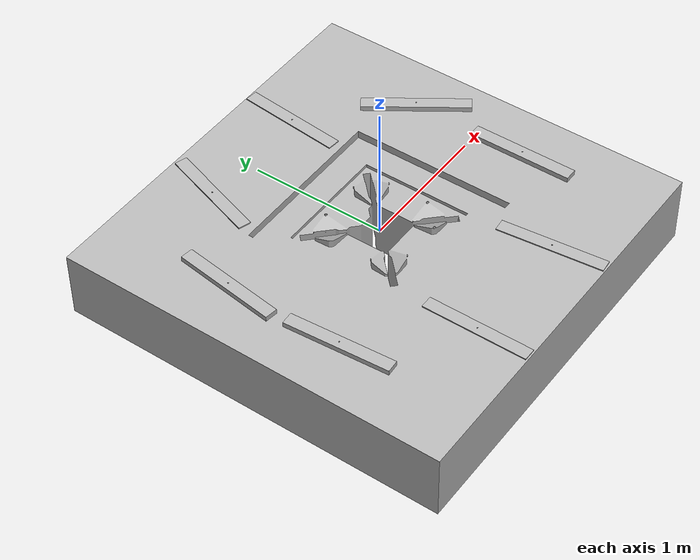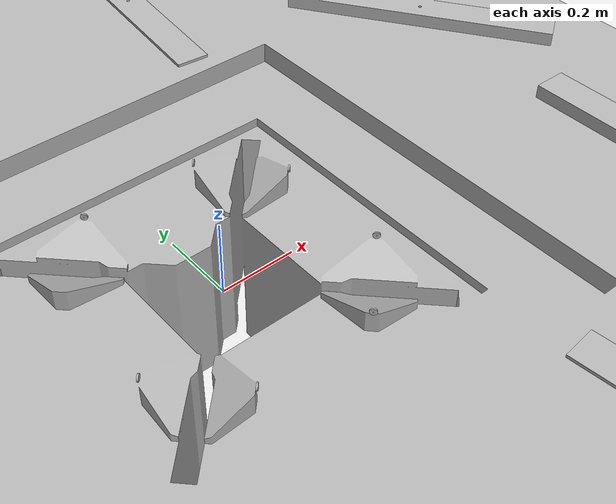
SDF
<sdf version='1.7'>
  <model name='UHL_V6_collision_SIM_V03.SLDASM'>
    <link name='base_link_col'>
      <inertial>
        <pose>0 0.000123 -0.14229 0 -0 0</pose>
        <mass>3900.6</mass>
        <inertia>
          <ixx>2835.7</ixx>
          <ixy>6.7307e-14</ixy>
          <ixz>-1.9911e-14</ixz>
          <iyy>2835.5</iyy>
          <iyz>0.017642</iyz>
          <izz>5515.3</izz>
        </inertia>
      </inertial>
      <collision name='base_link_col_collision'>
        <pose>0 0 0 0 -0 0</pose>
        <geometry>
          <mesh>
            <scale>1 1 1</scale>
            <uri>model://UHL_V6_collision_SIM_V03.SLDASM/meshes/base_link_col.STL</uri>
          </mesh>
        </geometry>
      </collision>
      <visual name='base_link_col_visual'>
        <pose>0 0 0 0 -0 0</pose>
        <geometry>
          <mesh>
            <scale>1 1 1</scale>
            <uri>model://UHL_V6_collision_SIM_V03.SLDASM/meshes/base_link_col.STL</uri>
          </mesh>
        </geometry>
      </visual>
    </link>
    <joint name='prop_1_col' type='revolute'>
      <pose relative_to='base_link_col'>1.0378 -0.42844 0.1217 0 -0 1.5708</pose>
      <parent>base_link_col</parent>
      <child>prop_1_col</child>
      <axis>
        <xyz>0 0 1</xyz>
        <limit>
          <lower>-1e+16</lower>
          <upper>1e+16</upper>
          <effort>100</effort>
          <velocity>100</velocity>
        </limit>
        <dynamics>
          <damping>0.004</damping>
          <friction>0</friction>
          <spring_reference>0</spring_reference>
          <spring_stiffness>0</spring_stiffness>
        </dynamics>
      </axis>
    </joint>
    <link name='prop_1_col'>
      <pose relative_to='prop_1_col'>0 0 0 0 -0 0</pose>
      <inertial>
        <pose>-0 0 0 0 -0 0</pose>
        <mass>3.6413</mass>
        <inertia>
          <ixx>0.0033917</ixx>
          <ixy>8.1992e-16</ixy>
          <ixz>-7.0271e-19</ixz>
          <iyy>0.17721</iyy>
          <iyz>-5.0088e-20</iyz>
          <izz>0.17896</izz>
        </inertia>
      </inertial>
      <collision name='prop_1_col_collision'>
        <pose>0 0 0 0 -0 0</pose>
        <geometry>
          <mesh>
            <scale>1 1 1</scale>
            <uri>model://UHL_V6_collision_SIM_V03.SLDASM/meshes/prop_1_col.STL</uri>
          </mesh>
        </geometry>
      </collision>
      <visual name='prop_1_col_visual'>
        <pose>0 0 0 0 -0 0</pose>
        <geometry>
          <mesh>
            <scale>1 1 1</scale>
            <uri>model://UHL_V6_collision_SIM_V03.SLDASM/meshes/prop_1_col.STL</uri>
          </mesh>
        </geometry>
      </visual>
    </link>
    <joint name='prop_2_col' type='revolute'>
      <pose relative_to='base_link_col'>-1.0378 0.42844 0.1217 0 -0 1.4342</pose>
      <parent>base_link_col</parent>
      <child>prop_2_col</child>
      <axis>
        <xyz>0 0 1</xyz>
        <limit>
          <lower>-1e+16</lower>
          <upper>1e+16</upper>
          <effort>100</effort>
          <velocity>100</velocity>
        </limit>
        <dynamics>
          <damping>0.004</damping>
          <friction>0</friction>
          <spring_reference>0</spring_reference>
          <spring_stiffness>0</spring_stiffness>
        </dynamics>
      </axis>
    </joint>
    <link name='prop_2_col'>
      <pose relative_to='prop_2_col'>0 0 0 0 -0 0</pose>
      <inertial>
        <pose>-0 0 0 0 -0 0</pose>
        <mass>3.64132</mass>
        <inertia>
          <ixx>0.00339171</ixx>
          <ixy>7.78972e-16</ixy>
          <ixz>3.77845e-19</ixz>
          <iyy>0.177211</iyy>
          <iyz>-6.25654e-20</iyz>
          <izz>0.178962</izz>
        </inertia>
      </inertial>
      <collision name='prop_2_col_collision'>
        <pose>0 0 0 0 -0 0</pose>
        <geometry>
          <mesh>
            <scale>1 1 1</scale>
            <uri>model://UHL_V6_collision_SIM_V03.SLDASM/meshes/prop_2_col.STL</uri>
          </mesh>
        </geometry>
      </collision>
      <visual name='prop_2_col_visual'>
        <pose>0 0 0 0 -0 0</pose>
        <geometry>
          <mesh>
            <scale>1 1 1</scale>
            <uri>model://UHL_V6_collision_SIM_V03.SLDASM/meshes/prop_2_col.STL</uri>
          </mesh>
        </geometry>
      </visual>
    </link>
    <joint name='prop_3_col' type='revolute'>
      <pose relative_to='base_link_col'>0.43532 -1.0378 0.093 0 0 -1.468</pose>
      <parent>base_link_col</parent>
      <child>prop_3_col</child>
      <axis>
        <xyz>0 0 1</xyz>
        <limit>
          <lower>-1e+16</lower>
          <upper>1e+16</upper>
          <effort>100</effort>
          <velocity>100</velocity>
        </limit>
        <dynamics>
          <damping>0.004</damping>
          <friction>0</friction>
          <spring_reference>0</spring_reference>
          <spring_stiffness>0</spring_stiffness>
        </dynamics>
      </axis>
    </joint>
    <link name='prop_3_col'>
      <pose relative_to='prop_3_col'>0 0 0 0 -0 0</pose>
      <inertial>
        <pose>-0 -0 0 0 -0 0</pose>
        <mass>3.64132</mass>
        <inertia>
          <ixx>0.00339171</ixx>
          <ixy>8.31963e-16</ixy>
          <ixz>-2.78302e-19</ixz>
          <iyy>0.177211</iyy>
          <iyz>-3.68188e-21</iyz>
          <izz>0.178962</izz>
        </inertia>
      </inertial>
      <collision name='prop_3_col_collision'>
        <pose>0 0 0 0 -0 0</pose>
        <geometry>
          <mesh>
            <scale>1 1 1</scale>
            <uri>model://UHL_V6_collision_SIM_V03.SLDASM/meshes/prop_3_col.STL</uri>
          </mesh>
        </geometry>
      </collision>
      <visual name='prop_3_col_visual'>
        <pose>0 0 0 0 -0 0</pose>
        <geometry>
          <mesh>
            <scale>1 1 1</scale>
            <uri>model://UHL_V6_collision_SIM_V03.SLDASM/meshes/prop_3_col.STL</uri>
          </mesh>
        </geometry>
      </visual>
    </link>
    <joint name='prop_4_col' type='revolute'>
      <pose relative_to='base_link_col'>-1.03778 -0.428443 0.121702 0 0 -1.50178</pose>
      <parent>base_link_col</parent>
      <child>prop_4_col</child>
      <axis>
        <xyz>0 0 1</xyz>
        <limit>
          <lower>-1e+16</lower>
          <upper>1e+16</upper>
          <effort>100</effort>
          <velocity>100</velocity>
        </limit>
        <dynamics>
          <damping>0.004</damping>
          <friction>0</friction>
          <spring_reference>0</spring_reference>
          <spring_stiffness>0</spring_stiffness>
        </dynamics>
      </axis>
    </joint>
    <link name='prop_4_col'>
      <pose relative_to='prop_4_col'>0 0 0 0 -0 0</pose>
      <inertial>
        <pose>-0 0 0 0 -0 0</pose>
        <mass>3.64132</mass>
        <inertia>
          <ixx>0.00339171</ixx>
          <ixy>8.17231e-16</ixy>
          <ixz>1.58132e-18</ixz>
          <iyy>0.177211</iyy>
          <iyz>-2.35559e-19</iyz>
          <izz>0.178962</izz>
        </inertia>
      </inertial>
      <collision name='prop_4_col_collision'>
        <pose>0 0 0 0 -0 0</pose>
        <geometry>
          <mesh>
            <scale>1 1 1</scale>
            <uri>model://UHL_V6_collision_SIM_V03.SLDASM/meshes/prop_4_col.STL</uri>
          </mesh>
        </geometry>
      </collision>
      <visual name='prop_4_col_visual'>
        <pose>0 0 0 0 -0 0</pose>
        <geometry>
          <mesh>
            <scale>1 1 1</scale>
            <uri>model://UHL_V6_collision_SIM_V03.SLDASM/meshes/prop_4_col.STL</uri>
          </mesh>
        </geometry>
      </visual>
    </link>
    <joint name='prop_5_col' type='revolute'>
      <pose relative_to='base_link_col'>1.0378 0.42844 0.1217 0 -0 2.1692</pose>
      <parent>base_link_col</parent>
      <child>prop_5_col</child>
      <axis>
        <xyz>0 0 1</xyz>
        <limit>
          <lower>-1e+16</lower>
          <upper>1e+16</upper>
          <effort>100</effort>
          <velocity>100</velocity>
        </limit>
        <dynamics>
          <damping>0.004</damping>
          <friction>0</friction>
          <spring_reference>0</spring_reference>
          <spring_stiffness>0</spring_stiffness>
        </dynamics>
      </axis>
    </joint>
    <link name='prop_5_col'>
      <pose relative_to='prop_5_col'>0 0 0 0 -0 0</pose>
      <inertial>
        <pose>-0 0 0 0 -0 0</pose>
        <mass>3.64132</mass>
        <inertia>
          <ixx>0.00339171</ixx>
          <ixy>8.04478e-16</ixy>
          <ixz>-4.54334e-19</ixz>
          <iyy>0.177211</iyy>
          <iyz>3.99908e-19</iyz>
          <izz>0.178962</izz>
        </inertia>
      </inertial>
      <collision name='prop_5_col_collision'>
        <pose>0 0 0 0 -0 0</pose>
        <geometry>
          <mesh>
            <scale>1 1 1</scale>
            <uri>model://UHL_V6_collision_SIM_V03.SLDASM/meshes/prop_5_col.STL</uri>
          </mesh>
        </geometry>
      </collision>
      <visual name='prop_5_col_visual'>
        <pose>0 0 0 0 -0 0</pose>
        <geometry>
          <mesh>
            <scale>1 1 1</scale>
            <uri>model://UHL_V6_collision_SIM_V03.SLDASM/meshes/prop_5_col.STL</uri>
          </mesh>
        </geometry>
      </visual>
    </link>
    <joint name='prop_6_col' type='revolute'>
      <pose relative_to='base_link_col'>-0.435324 1.03778 0.093 0 0 -1.88686</pose>
      <parent>base_link_col</parent>
      <child>prop_6_col</child>
      <axis>
        <xyz>0 0 1</xyz>
        <limit>
          <lower>-1e+16</lower>
          <upper>1e+16</upper>
          <effort>100</effort>
          <velocity>100</velocity>
        </limit>
        <dynamics>
          <damping>0.004</damping>
          <friction>0</friction>
          <spring_reference>0</spring_reference>
          <spring_stiffness>0</spring_stiffness>
        </dynamics>
      </axis>
    </joint>
    <link name='prop_6_col'>
      <pose relative_to='prop_6_col'>0 0 0 0 -0 0</pose>
      <inertial>
        <pose>-0 0 -0 0 -0 0</pose>
        <mass>3.64132</mass>
        <inertia>
          <ixx>0.00339171</ixx>
          <ixy>8.32667e-16</ixy>
          <ixz>2.90728e-18</ixz>
          <iyy>0.177211</iyy>
          <iyz>6.07748e-19</iyz>
          <izz>0.178962</izz>
        </inertia>
      </inertial>
      <collision name='prop_6_col_collision'>
        <pose>0 0 0 0 -0 0</pose>
        <geometry>
          <mesh>
            <scale>1 1 1</scale>
            <uri>model://UHL_V6_collision_SIM_V03.SLDASM/meshes/prop_6_col.STL</uri>
          </mesh>
        </geometry>
      </collision>
      <visual name='prop_6_col_visual'>
        <pose>0 0 0 0 -0 0</pose>
        <geometry>
          <mesh>
            <scale>1 1 1</scale>
            <uri>model://UHL_V6_collision_SIM_V03.SLDASM/meshes/prop_6_col.STL</uri>
          </mesh>
        </geometry>
      </visual>
    </link>
    <joint name='prop_7_col' type='revolute'>
      <pose relative_to='base_link_col'>0.435324 1.03778 0.093 0 -0 1.4743</pose>
      <parent>base_link_col</parent>
      <child>prop_7_col</child>
      <axis>
        <xyz>0 0 1</xyz>
        <limit>
          <lower>-1e+16</lower>
          <upper>1e+16</upper>
          <effort>100</effort>
          <velocity>100</velocity>
        </limit>
        <dynamics>
          <damping>0.004</damping>
          <friction>0</friction>
          <spring_reference>0</spring_reference>
          <spring_stiffness>0</spring_stiffness>
        </dynamics>
      </axis>
    </joint>
    <link name='prop_7_col'>
      <pose relative_to='prop_7_col'>0 0 0 0 -0 0</pose>
      <inertial>
        <pose>-0 -0 0 0 -0 0</pose>
        <mass>3.64132</mass>
        <inertia>
          <ixx>0.00339171</ixx>
          <ixy>8.48605e-16</ixy>
          <ixz>-5.63013e-20</ixz>
          <iyy>0.177211</iyy>
          <iyz>-6.49134e-20</iyz>
          <izz>0.178962</izz>
        </inertia>
      </inertial>
      <collision name='prop_7_col_collision'>
        <pose>0 0 0 0 -0 0</pose>
        <geometry>
          <mesh>
            <scale>1 1 1</scale>
            <uri>model://UHL_V6_collision_SIM_V03.SLDASM/meshes/prop_7_col.STL</uri>
          </mesh>
        </geometry>
      </collision>
      <visual name='prop_7_col_visual'>
        <pose>0 0 0 0 -0 0</pose>
        <geometry>
          <mesh>
            <scale>1 1 1</scale>
            <uri>model://UHL_V6_collision_SIM_V03.SLDASM/meshes/prop_7_col.STL</uri>
          </mesh>
        </geometry>
      </visual>
    </link>
    <joint name='prop_8_col' type='revolute'>
      <pose relative_to='base_link_col'>-0.435324 -1.03778 0.093 0 -0 1.5708</pose>
      <parent>base_link_col</parent>
      <child>prop_8_col</child>
      <axis>
        <xyz>0 0 1</xyz>
        <limit>
          <lower>-1e+16</lower>
          <upper>1e+16</upper>
          <effort>100</effort>
          <velocity>100</velocity>
        </limit>
        <dynamics>
          <damping>0.004</damping>
          <friction>0</friction>
          <spring_reference>0</spring_reference>
          <spring_stiffness>0</spring_stiffness>
        </dynamics>
      </axis>
    </joint>
    <link name='prop_8_col'>
      <pose relative_to='prop_8_col'>0 0 0 0 -0 0</pose>
      <inertial>
        <pose>-0 0 0 0 -0 0</pose>
        <mass>3.64132</mass>
        <inertia>
          <ixx>0.00339171</ixx>
          <ixy>8.22521e-16</ixy>
          <ixz>2.99608e-18</ixz>
          <iyy>0.177211</iyy>
          <iyz>2.04385e-19</iyz>
          <izz>0.178962</izz>
        </inertia>
      </inertial>
      <collision name='prop_8_col_collision'>
        <pose>0 0 0 0 -0 0</pose>
        <geometry>
          <mesh>
            <scale>1 1 1</scale>
            <uri>model://UHL_V6_collision_SIM_V03.SLDASM/meshes/prop_8_col.STL</uri>
          </mesh>
        </geometry>
      </collision>
      <visual name='prop_8_col_visual'>
        <pose>0 0 0 0 -0 0</pose>
        <geometry>
          <mesh>
            <scale>1 1 1</scale>
            <uri>model://UHL_V6_collision_SIM_V03.SLDASM/meshes/prop_8_col.STL</uri>
          </mesh>
        </geometry>
      </visual>
    </link>
    <joint name='roller_1_col' type='revolute'>
      <pose relative_to='base_link_col'>-0.320858 -0.154626 0.093325 1.5708 -0.632227 -2.35619</pose>
      <parent>base_link_col</parent>
      <child>roller_1_col</child>
      <axis>
        <xyz>0 0 1</xyz>
        <limit>
          <effort>100</effort>
          <velocity>100</velocity>
          <lower>-1e+16</lower>
          <upper>1e+16</upper>
        </limit>
        <dynamics>
          <damping>0.004</damping>
          <friction>0</friction>
          <spring_reference>0</spring_reference>
          <spring_stiffness>0</spring_stiffness>
        </dynamics>
      </axis>
    </joint>
    <link name='roller_1_col'>
      <pose relative_to='roller_1_col'>0 0 0 0 -0 0</pose>
      <inertial>
        <pose>0 0 0 0 -0 0</pose>
        <mass>0.000989602</mass>
        <inertia>
          <ixx>2.19156e-08</ixx>
          <ixy>2.06795e-24</ixy>
          <ixz>0</ixz>
          <iyy>2.19156e-08</iyy>
          <iyz>1.29454e-22</iyz>
          <izz>4.11922e-08</izz>
        </inertia>
      </inertial>
      <collision name='roller_1_col_collision'>
        <pose>0 0 0 0 -0 0</pose>
        <geometry>
          <mesh>
            <scale>1 1 1</scale>
            <uri>model://UHL_V6_collision_SIM_V03.SLDASM/meshes/roller_1_col.STL</uri>
          </mesh>
        </geometry>
      </collision>
      <visual name='roller_1_col_visual'>
        <pose>0 0 0 0 -0 0</pose>
        <geometry>
          <mesh>
            <scale>1 1 1</scale>
            <uri>model://UHL_V6_collision_SIM_V03.SLDASM/meshes/roller_1_col.STL</uri>
          </mesh>
        </geometry>
      </visual>
    </link>
    <joint name='roller_2_col' type='revolute'>
      <pose relative_to='base_link_col'>-0.154626 -0.320858 0.093325 1.5708 -0.538795 0.785398</pose>
      <parent>base_link_col</parent>
      <child>roller_2_col</child>
      <axis>
        <xyz>0 0 -1</xyz>
        <limit>
          <effort>100</effort>
          <velocity>100</velocity>
          <lower>-1e+16</lower>
          <upper>1e+16</upper>
        </limit>
        <dynamics>
          <damping>0.004</damping>
          <friction>0</friction>
          <spring_reference>0</spring_reference>
          <spring_stiffness>0</spring_stiffness>
        </dynamics>
      </axis>
    </joint>
    <link name='roller_2_col'>
      <pose relative_to='roller_2_col'>0 0 0 0 -0 0</pose>
      <inertial>
        <pose>-0 0 -0 0 -0 0</pose>
        <mass>0.000989602</mass>
        <inertia>
          <ixx>2.19156e-08</ixx>
          <ixy>-1.24077e-24</ixy>
          <ixz>-3.30872e-24</ixz>
          <iyy>2.19156e-08</iyy>
          <iyz>-1.65436e-24</iyz>
          <izz>4.11922e-08</izz>
        </inertia>
      </inertial>
      <collision name='roller_2_col_collision'>
        <pose>0 0 0 0 -0 0</pose>
        <geometry>
          <mesh>
            <scale>1 1 1</scale>
            <uri>model://UHL_V6_collision_SIM_V03.SLDASM/meshes/roller_2_col.STL</uri>
          </mesh>
        </geometry>
      </collision>
      <visual name='roller_2_col_visual'>
        <pose>0 0 0 0 -0 0</pose>
        <geometry>
          <mesh>
            <scale>1 1 1</scale>
            <uri>model://UHL_V6_collision_SIM_V03.SLDASM/meshes/roller_2_col.STL</uri>
          </mesh>
        </geometry>
      </visual>
    </link>
    <joint name='roller_3_col' type='revolute'>
      <pose relative_to='base_link_col'>0.154626 -0.320858 0.093325 1.5708 -1.39642 -0.785398</pose>
      <parent>base_link_col</parent>
      <child>roller_3_col</child>
      <axis>
        <xyz>0 0 1</xyz>
        <limit>
          <effort>100</effort>
          <velocity>100</velocity>
          <lower>-1e+16</lower>
          <upper>1e+16</upper>
        </limit>
        <dynamics>
          <damping>0.004</damping>
          <friction>0</friction>
          <spring_reference>0</spring_reference>
          <spring_stiffness>0</spring_stiffness>
        </dynamics>
      </axis>
    </joint>
    <link name='roller_3_col'>
      <pose relative_to='roller_3_col'>0 0 0 0 -0 0</pose>
      <inertial>
        <pose>0 0 0 0 -0 0</pose>
        <mass>0.000989602</mass>
        <inertia>
          <ixx>2.19156e-08</ixx>
          <ixy>-8.27181e-25</ixy>
          <ixz>-1.44757e-24</ixz>
          <iyy>2.19156e-08</iyy>
          <iyz>6.20385e-22</iyz>
          <izz>4.11922e-08</izz>
        </inertia>
      </inertial>
      <collision name='roller_3_col_collision'>
        <pose>0 0 0 0 -0 0</pose>
        <geometry>
          <mesh>
            <scale>1 1 1</scale>
            <uri>model://UHL_V6_collision_SIM_V03.SLDASM/meshes/roller_3_col.STL</uri>
          </mesh>
        </geometry>
      </collision>
      <visual name='roller_3_col_visual'>
        <pose>0 0 0 0 -0 0</pose>
        <geometry>
          <mesh>
            <scale>1 1 1</scale>
            <uri>model://UHL_V6_collision_SIM_V03.SLDASM/meshes/roller_3_col.STL</uri>
          </mesh>
        </geometry>
      </visual>
    </link>
    <joint name='roller_4_col' type='revolute'>
      <pose relative_to='base_link_col'>0.32086 -0.15463 0.093325 1.5708 -0 2.3562</pose>
      <parent>base_link_col</parent>
      <child>roller_4_col</child>
      <axis>
        <xyz>0 0 -1</xyz>
        <limit>
          <effort>100</effort>
          <velocity>100</velocity>
          <lower>-1e+16</lower>
          <upper>1e+16</upper>
        </limit>
        <dynamics>
          <damping>0.004</damping>
          <friction>0</friction>
          <spring_reference>0</spring_reference>
          <spring_stiffness>0</spring_stiffness>
        </dynamics>
      </axis>
    </joint>
    <link name='roller_4_col'>
      <pose relative_to='roller_4_col'>0 0 0 0 -0 0</pose>
      <inertial>
        <pose>-0 0 0 0 -0 0</pose>
        <mass>0.000989602</mass>
        <inertia>
          <ixx>2.19156e-08</ixx>
          <ixy>-4.7768e-24</ixy>
          <ixz>-8.27181e-24</ixz>
          <iyy>2.19156e-08</iyy>
          <iyz>1.83461e-24</iyz>
          <izz>4.11922e-08</izz>
        </inertia>
      </inertial>
      <collision name='roller_4_col_collision'>
        <pose>0 0 0 0 -0 0</pose>
        <geometry>
          <mesh>
            <scale>1 1 1</scale>
            <uri>model://UHL_V6_collision_SIM_V03.SLDASM/meshes/roller_4_col.STL</uri>
          </mesh>
        </geometry>
      </collision>
      <visual name='roller_4_col_visual'>
        <pose>0 0 0 0 -0 0</pose>
        <geometry>
          <mesh>
            <scale>1 1 1</scale>
            <uri>model://UHL_V6_collision_SIM_V03.SLDASM/meshes/roller_4_col.STL</uri>
          </mesh>
        </geometry>
      </visual>
    </link>
    <joint name='roller_5_col' type='revolute'>
      <pose relative_to='base_link_col'>0.32086 0.15463 0.093325 1.5708 0.39449 0.7854</pose>
      <parent>base_link_col</parent>
      <child>roller_5_col</child>
      <axis>
        <xyz>0 0 -1</xyz>
        <limit>
          <effort>100</effort>
          <velocity>100</velocity>
          <lower>-1e+16</lower>
          <upper>1e+16</upper>
        </limit>
        <dynamics>
          <damping>0.004</damping>
          <friction>0</friction>
          <spring_reference>0</spring_reference>
          <spring_stiffness>0</spring_stiffness>
        </dynamics>
      </axis>
    </joint>
    <link name='roller_5_col'>
      <pose relative_to='roller_5_col'>0 0 0 0 -0 0</pose>
      <inertial>
        <pose>0 0 -0 0 -0 0</pose>
        <mass>0.000989602</mass>
        <inertia>
          <ixx>2.19156e-08</ixx>
          <ixy>8.27181e-25</ixy>
          <ixz>-1.65436e-24</ixz>
          <iyy>2.19156e-08</iyy>
          <iyz>1.32349e-22</iyz>
          <izz>4.11922e-08</izz>
        </inertia>
      </inertial>
      <collision name='roller_5_col_collision'>
        <pose>0 0 0 0 -0 0</pose>
        <geometry>
          <mesh>
            <scale>1 1 1</scale>
            <uri>model://UHL_V6_collision_SIM_V03.SLDASM/meshes/roller_5_col.STL</uri>
          </mesh>
        </geometry>
      </collision>
      <visual name='roller_5_col_visual'>
        <pose>0 0 0 0 -0 0</pose>
        <geometry>
          <mesh>
            <scale>1 1 1</scale>
            <uri>model://UHL_V6_collision_SIM_V03.SLDASM/meshes/roller_5_col.STL</uri>
          </mesh>
        </geometry>
      </visual>
    </link>
    <joint name='roller_6_col' type='revolute'>
      <pose relative_to='base_link_col'>0.15463 0.32086 0.093325 1.5708 -0 -2.3562</pose>
      <parent>base_link_col</parent>
      <child>roller_6_col</child>
      <axis>
        <xyz>0 0 1</xyz>
        <limit>
          <effort>100</effort>
          <velocity>100</velocity>
          <lower>-1e+16</lower>
          <upper>1e+16</upper>
        </limit>
        <dynamics>
          <damping>0.004</damping>
          <friction>0</friction>
          <spring_reference>0</spring_reference>
          <spring_stiffness>0</spring_stiffness>
        </dynamics>
      </axis>
    </joint>
    <link name='roller_6_col'>
      <pose relative_to='roller_6_col'>0 0 0 0 -0 0</pose>
      <inertial>
        <pose>-0 0 0 0 -0 0</pose>
        <mass>0.000989602</mass>
        <inertia>
          <ixx>2.19156e-08</ixx>
          <ixy>1.86037e-25</ixy>
          <ixz>0</ixz>
          <iyy>2.19156e-08</iyy>
          <iyz>-1.04824e-24</iyz>
          <izz>4.11922e-08</izz>
        </inertia>
      </inertial>
      <collision name='roller_6_col_collision'>
        <pose>0 0 0 0 -0 0</pose>
        <geometry>
          <mesh>
            <scale>1 1 1</scale>
            <uri>model://UHL_V6_collision_SIM_V03.SLDASM/meshes/roller_6_col.STL</uri>
          </mesh>
        </geometry>
      </collision>
      <visual name='roller_6_col_visual'>
        <pose>0 0 0 0 -0 0</pose>
        <geometry>
          <mesh>
            <scale>1 1 1</scale>
            <uri>model://UHL_V6_collision_SIM_V03.SLDASM/meshes/roller_6_col.STL</uri>
          </mesh>
        </geometry>
      </visual>
    </link>
    <joint name='roller_7_col' type='revolute'>
      <pose relative_to='base_link_col'>-0.15463 0.32086 0.093325 1.5708 -0 2.3562</pose>
      <parent>base_link_col</parent>
      <child>roller_7_col</child>
      <axis>
        <xyz>0 0 -1</xyz>
        <limit>
          <effort>100</effort>
          <velocity>100</velocity>
          <lower>-1e+16</lower>
          <upper>1e+16</upper>
        </limit>
        <dynamics>
          <damping>0.004</damping>
          <friction>0</friction>
          <spring_reference>0</spring_reference>
          <spring_stiffness>0</spring_stiffness>
        </dynamics>
      </axis>
    </joint>
    <link name='roller_7_col'>
      <pose relative_to='roller_7_col'>0 0 0 0 -0 0</pose>
      <inertial>
        <pose>0 0 -0 0 -0 0</pose>
        <mass>0.000989602</mass>
        <inertia>
          <ixx>2.19156e-08</ixx>
          <ixy>-1.19759e-24</ixy>
          <ixz>-4.96308e-24</ixz>
          <iyy>2.19156e-08</iyy>
          <iyz>-1.51127e-24</iyz>
          <izz>4.11922e-08</izz>
        </inertia>
      </inertial>
      <collision name='roller_7_col_collision'>
        <pose>0 0 0 0 -0 0</pose>
        <geometry>
          <mesh>
            <scale>1 1 1</scale>
            <uri>model://UHL_V6_collision_SIM_V03.SLDASM/meshes/roller_7_col.STL</uri>
          </mesh>
        </geometry>
      </collision>
      <visual name='roller_7_col_visual'>
        <pose>0 0 0 0 -0 0</pose>
        <geometry>
          <mesh>
            <scale>1 1 1</scale>
            <uri>model://UHL_V6_collision_SIM_V03.SLDASM/meshes/roller_7_col.STL</uri>
          </mesh>
        </geometry>
      </visual>
    </link>
  </model>
</sdf>
